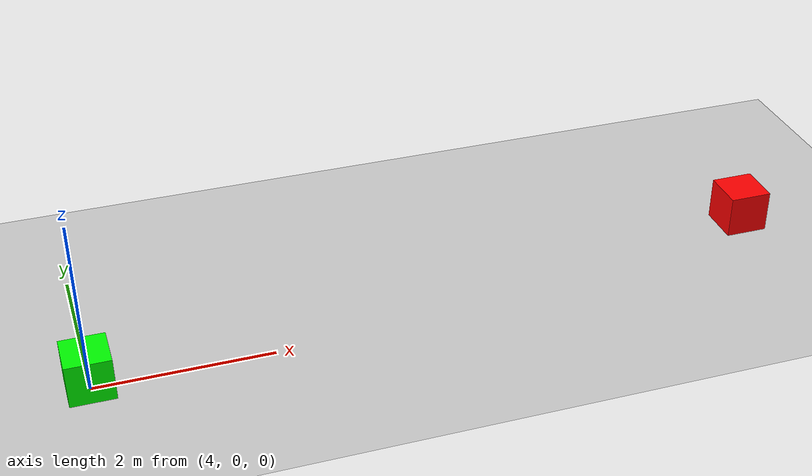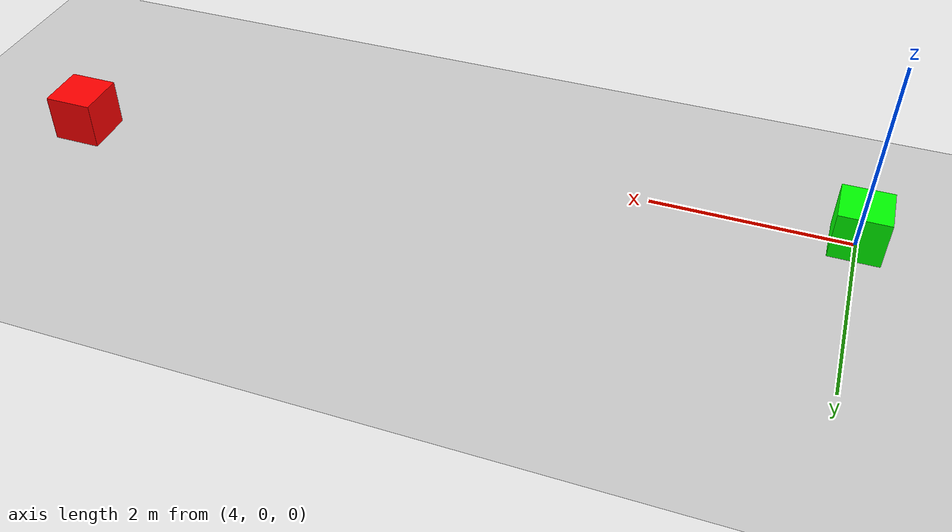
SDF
<?xml version="1.0" ?>
<sdf version="1.6">
  <world name="default">
    <light type="directional" name="sun">
      <cast_shadows>true</cast_shadows>
      <pose>0 0 10 0 0 0</pose>
      <diffuse>0.8 0.8 0.8 1</diffuse>
      <specular>0.2 0.2 0.2 1</specular>
      <direction>-0.5 0.1 -0.9</direction>
    </light>
    <model name="ground_plane">
      <static>true</static>
      <link name="link">
        <collision name="collision"><geometry><plane><normal>0 0 1</normal><size>100 100</size></plane></geometry></collision>
        <visual name="visual"><geometry><plane><normal>0 0 1</normal><size>100 100</size></plane></geometry>
          <material><ambient>0.8 0.8 0.8 1</ambient><diffuse>0.8 0.8 0.8 1</diffuse></material></visual>
      </link>
    </model>

    <plugin filename="gz-sim-physics-system" name="gz::sim::systems::Physics"/>
    <plugin filename="gz-sim-user-commands-system" name="gz::sim::systems::UserCommands"/>
    <plugin filename="gz-sim-scene-broadcaster-system" name="gz::sim::systems::SceneBroadcaster"/>
    <plugin filename="gz-sim-sensors-system" name="gz::sim::systems::Sensors">
      <render_engine>ogre2</render_engine>
    </plugin>
    <plugin filename="gz-sim-imu-system" name="gz::sim::systems::Imu"/>

    <model name='obstacle_safe'>
      <pose>4.0 0.0 0.25 0 0 0</pose>
      <static>1</static>
      <link name='link'>
        <collision name='collision'><geometry><box><size>0.5 0.5 0.5</size></box></geometry></collision>
        <visual name='visual'>
          <geometry><box><size>0.5 0.5 0.5</size></box></geometry>
          <material><ambient>0 1 0 1</ambient><diffuse>0 1 0 1</diffuse></material>
        </visual>
      </link>
    </model>

    <model name='obstacle_danger'>
      <pose>12.0 0.8 0.25 0 0 0</pose>
      <static>0</static>
      <link name='link'>
        <inertial>
          <mass>1.0</mass>
          <inertia><ixx>0.1</ixx><ixy>0</ixy><ixz>0</ixz><iyy>0.1</iyy><iyz>0</iyz><izz>0.1</izz></inertia>
        </inertial>
        <collision name='collision'><geometry><box><size>0.5 0.5 0.5</size></box></geometry></collision>
        <visual name='visual'>
          <geometry><box><size>0.5 0.5 0.5</size></box></geometry>
          <material><ambient>1 0 0 1</ambient><diffuse>1 0 0 1</diffuse></material>
        </visual>
      </link>
      <plugin filename="gz-sim-velocity-control-system" name="gz::sim::systems::VelocityControl"/>
    </model>

  </world>
</sdf>
